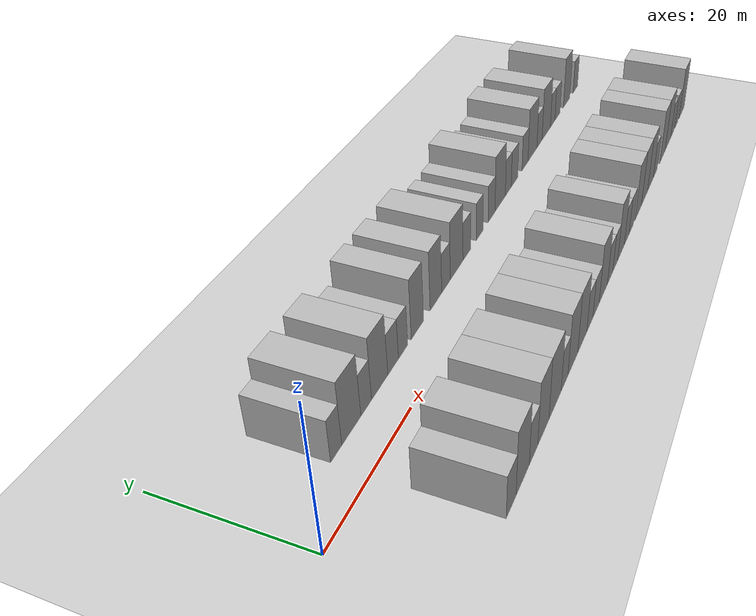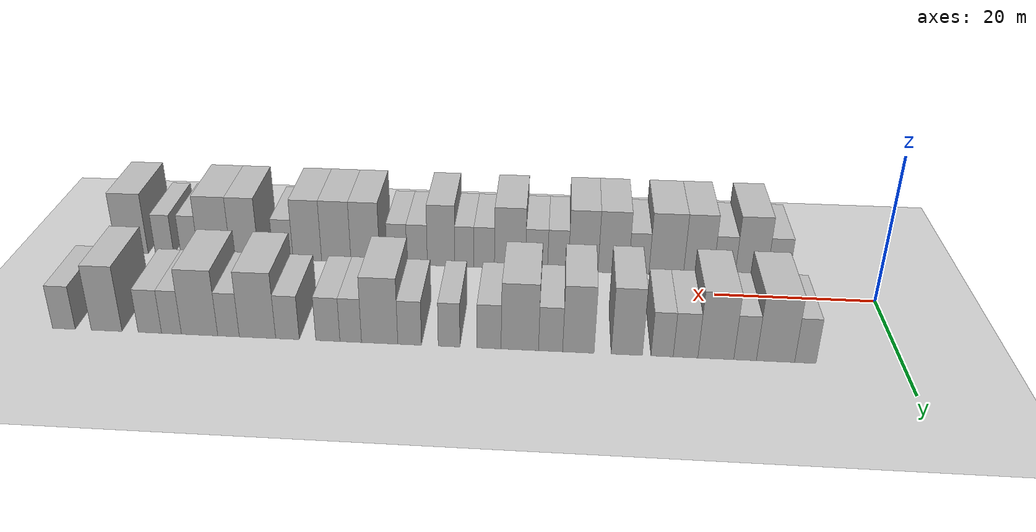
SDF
<sdf version="1.6">
 <world name="default">
  <include><name>ground_plane_1</name><uri>model://HANNAS_ground_plane</uri></include>
  <model name="building_1">
   <static>1</static>
   <pose>11.2225 9.5000 0 0.000000 0.000000 1.570796</pose>
   <link name="link">
    <pose>0 0 3.00 0 0 0</pose>
    <collision name="collision"><geometry><box><size>10.0000 2.4450 6.0000</size></box></geometry></collision>
    <visual name="visual">
     <cast_shadows>0</cast_shadows>
     <geometry><box><size>10.0000 2.4450 6.0000</size></box></geometry>
     <material>
      <script>
       <uri>model://HANNAS_wall/materials/scripts</uri>
       <uri>model://HANNAS_wall/materials/textures</uri>
       <name>vrc/HANNAS_wall</name>
      </script>
     </material>
    </visual>
   </link>
  </model>
  <model name="building_2">
   <static>1</static>
   <pose>14.6333 9.5000 0 0.000000 0.000000 1.570796</pose>
   <link name="link">
    <pose>0 0 4.50 0 0 0</pose>
    <collision name="collision"><geometry><box><size>10.0000 4.3764 9.0000</size></box></geometry></collision>
    <visual name="visual">
     <cast_shadows>0</cast_shadows>
     <geometry><box><size>10.0000 4.3764 9.0000</size></box></geometry>
     <material>
      <script>
       <uri>model://HANNAS_wall/materials/scripts</uri>
       <uri>model://HANNAS_wall/materials/textures</uri>
       <name>vrc/HANNAS_wall</name>
      </script>
     </material>
    </visual>
   </link>
  </model>
  <model name="building_3">
   <static>1</static>
   <pose>18.1173 9.5000 0 0.000000 0.000000 1.570796</pose>
   <link name="link">
    <pose>0 0 3.00 0 0 0</pose>
    <collision name="collision"><geometry><box><size>10.0000 2.5916 6.0000</size></box></geometry></collision>
    <visual name="visual">
     <cast_shadows>0</cast_shadows>
     <geometry><box><size>10.0000 2.5916 6.0000</size></box></geometry>
     <material>
      <script>
       <uri>model://HANNAS_wall/materials/scripts</uri>
       <uri>model://HANNAS_wall/materials/textures</uri>
       <name>vrc/HANNAS_wall</name>
      </script>
     </material>
    </visual>
   </link>
  </model>
  <model name="building_4">
   <static>1</static>
   <pose>21.4784 9.5000 0 0.000000 0.000000 1.570796</pose>
   <link name="link">
    <pose>0 0 4.50 0 0 0</pose>
    <collision name="collision"><geometry><box><size>10.0000 4.1306 9.0000</size></box></geometry></collision>
    <visual name="visual">
     <cast_shadows>0</cast_shadows>
     <geometry><box><size>10.0000 4.1306 9.0000</size></box></geometry>
     <material>
      <script>
       <uri>model://HANNAS_wall/materials/scripts</uri>
       <uri>model://HANNAS_wall/materials/textures</uri>
       <name>vrc/HANNAS_wall</name>
      </script>
     </material>
    </visual>
   </link>
  </model>
  <model name="building_5">
   <static>1</static>
   <pose>24.9693 9.5000 0 0.000000 0.000000 1.570796</pose>
   <link name="link">
    <pose>0 0 3.00 0 0 0</pose>
    <collision name="collision"><geometry><box><size>10.0000 2.8512 6.0000</size></box></geometry></collision>
    <visual name="visual">
     <cast_shadows>0</cast_shadows>
     <geometry><box><size>10.0000 2.8512 6.0000</size></box></geometry>
     <material>
      <script>
       <uri>model://HANNAS_wall/materials/scripts</uri>
       <uri>model://HANNAS_wall/materials/textures</uri>
       <name>vrc/HANNAS_wall</name>
      </script>
     </material>
    </visual>
   </link>
  </model>
  <model name="building_6">
   <static>1</static>
   <pose>27.6801 9.5000 0 0.000000 0.000000 1.570796</pose>
   <link name="link">
    <pose>0 0 3.00 0 0 0</pose>
    <collision name="collision"><geometry><box><size>10.0000 2.5704 6.0000</size></box></geometry></collision>
    <visual name="visual">
     <cast_shadows>0</cast_shadows>
     <geometry><box><size>10.0000 2.5704 6.0000</size></box></geometry>
     <material>
      <script>
       <uri>model://HANNAS_wall/materials/scripts</uri>
       <uri>model://HANNAS_wall/materials/textures</uri>
       <name>vrc/HANNAS_wall</name>
      </script>
     </material>
    </visual>
   </link>
  </model>
  <model name="building_7">
   <static>1</static>
   <pose>31.7829 9.5000 0 0.000000 0.000000 1.570796</pose>
   <link name="link">
    <pose>0 0 4.50 0 0 0</pose>
    <collision name="collision"><geometry><box><size>10.0000 3.6352 9.0000</size></box></geometry></collision>
    <visual name="visual">
     <cast_shadows>0</cast_shadows>
     <geometry><box><size>10.0000 3.6352 9.0000</size></box></geometry>
     <material>
      <script>
       <uri>model://HANNAS_wall/materials/scripts</uri>
       <uri>model://HANNAS_wall/materials/textures</uri>
       <name>vrc/HANNAS_wall</name>
      </script>
     </material>
    </visual>
   </link>
  </model>
  <model name="building_8">
   <static>1</static>
   <pose>37.4453 9.5000 0 0.000000 0.000000 1.570796</pose>
   <link name="link">
    <pose>0 0 4.50 0 0 0</pose>
    <collision name="collision"><geometry><box><size>10.0000 3.6897 9.0000</size></box></geometry></collision>
    <visual name="visual">
     <cast_shadows>0</cast_shadows>
     <geometry><box><size>10.0000 3.6897 9.0000</size></box></geometry>
     <material>
      <script>
       <uri>model://HANNAS_wall/materials/scripts</uri>
       <uri>model://HANNAS_wall/materials/textures</uri>
       <name>vrc/HANNAS_wall</name>
      </script>
     </material>
    </visual>
   </link>
  </model>
  <model name="building_9">
   <static>1</static>
   <pose>40.7067 9.5000 0 0.000000 0.000000 1.570796</pose>
   <link name="link">
    <pose>0 0 3.00 0 0 0</pose>
    <collision name="collision"><geometry><box><size>10.0000 2.8331 6.0000</size></box></geometry></collision>
    <visual name="visual">
     <cast_shadows>0</cast_shadows>
     <geometry><box><size>10.0000 2.8331 6.0000</size></box></geometry>
     <material>
      <script>
       <uri>model://HANNAS_wall/materials/scripts</uri>
       <uri>model://HANNAS_wall/materials/textures</uri>
       <name>vrc/HANNAS_wall</name>
      </script>
     </material>
    </visual>
   </link>
  </model>
  <model name="building_10">
   <static>1</static>
   <pose>44.3347 9.5000 0 0.000000 0.000000 1.570796</pose>
   <link name="link">
    <pose>0 0 4.50 0 0 0</pose>
    <collision name="collision"><geometry><box><size>10.0000 4.4229 9.0000</size></box></geometry></collision>
    <visual name="visual">
     <cast_shadows>0</cast_shadows>
     <geometry><box><size>10.0000 4.4229 9.0000</size></box></geometry>
     <material>
      <script>
       <uri>model://HANNAS_wall/materials/scripts</uri>
       <uri>model://HANNAS_wall/materials/textures</uri>
       <name>vrc/HANNAS_wall</name>
      </script>
     </material>
    </visual>
   </link>
  </model>
  <model name="building_11">
   <static>1</static>
   <pose>47.9818 9.5000 0 0.000000 0.000000 1.570796</pose>
   <link name="link">
    <pose>0 0 3.00 0 0 0</pose>
    <collision name="collision"><geometry><box><size>10.0000 2.8714 6.0000</size></box></geometry></collision>
    <visual name="visual">
     <cast_shadows>0</cast_shadows>
     <geometry><box><size>10.0000 2.8714 6.0000</size></box></geometry>
     <material>
      <script>
       <uri>model://HANNAS_wall/materials/scripts</uri>
       <uri>model://HANNAS_wall/materials/textures</uri>
       <name>vrc/HANNAS_wall</name>
      </script>
     </material>
    </visual>
   </link>
  </model>
  <model name="building_12">
   <static>1</static>
   <pose>52.7090 9.5000 0 0.000000 0.000000 1.570796</pose>
   <link name="link">
    <pose>0 0 3.00 0 0 0</pose>
    <collision name="collision"><geometry><box><size>10.0000 2.5830 6.0000</size></box></geometry></collision>
    <visual name="visual">
     <cast_shadows>0</cast_shadows>
     <geometry><box><size>10.0000 2.5830 6.0000</size></box></geometry>
     <material>
      <script>
       <uri>model://HANNAS_wall/materials/scripts</uri>
       <uri>model://HANNAS_wall/materials/textures</uri>
       <name>vrc/HANNAS_wall</name>
      </script>
     </material>
    </visual>
   </link>
  </model>
  <model name="building_13">
   <static>1</static>
   <pose>57.4176 9.5000 0 0.000000 0.000000 1.570796</pose>
   <link name="link">
    <pose>0 0 3.00 0 0 0</pose>
    <collision name="collision"><geometry><box><size>10.0000 2.8341 6.0000</size></box></geometry></collision>
    <visual name="visual">
     <cast_shadows>0</cast_shadows>
     <geometry><box><size>10.0000 2.8341 6.0000</size></box></geometry>
     <material>
      <script>
       <uri>model://HANNAS_wall/materials/scripts</uri>
       <uri>model://HANNAS_wall/materials/textures</uri>
       <name>vrc/HANNAS_wall</name>
      </script>
     </material>
    </visual>
   </link>
  </model>
  <model name="building_14">
   <static>1</static>
   <pose>61.0146 9.5000 0 0.000000 0.000000 1.570796</pose>
   <link name="link">
    <pose>0 0 4.50 0 0 0</pose>
    <collision name="collision"><geometry><box><size>10.0000 4.3599 9.0000</size></box></geometry></collision>
    <visual name="visual">
     <cast_shadows>0</cast_shadows>
     <geometry><box><size>10.0000 4.3599 9.0000</size></box></geometry>
     <material>
      <script>
       <uri>model://HANNAS_wall/materials/scripts</uri>
       <uri>model://HANNAS_wall/materials/textures</uri>
       <name>vrc/HANNAS_wall</name>
      </script>
     </material>
    </visual>
   </link>
  </model>
  <model name="building_15">
   <static>1</static>
   <pose>64.4956 9.5000 0 0.000000 0.000000 1.570796</pose>
   <link name="link">
    <pose>0 0 3.00 0 0 0</pose>
    <collision name="collision"><geometry><box><size>10.0000 2.6021 6.0000</size></box></geometry></collision>
    <visual name="visual">
     <cast_shadows>0</cast_shadows>
     <geometry><box><size>10.0000 2.6021 6.0000</size></box></geometry>
     <material>
      <script>
       <uri>model://HANNAS_wall/materials/scripts</uri>
       <uri>model://HANNAS_wall/materials/textures</uri>
       <name>vrc/HANNAS_wall</name>
      </script>
     </material>
    </visual>
   </link>
  </model>
  <model name="building_16">
   <static>1</static>
   <pose>67.2565 9.5000 0 0.000000 0.000000 1.570796</pose>
   <link name="link">
    <pose>0 0 3.00 0 0 0</pose>
    <collision name="collision"><geometry><box><size>10.0000 2.9195 6.0000</size></box></geometry></collision>
    <visual name="visual">
     <cast_shadows>0</cast_shadows>
     <geometry><box><size>10.0000 2.9195 6.0000</size></box></geometry>
     <material>
      <script>
       <uri>model://HANNAS_wall/materials/scripts</uri>
       <uri>model://HANNAS_wall/materials/textures</uri>
       <name>vrc/HANNAS_wall</name>
      </script>
     </material>
    </visual>
   </link>
  </model>
  <model name="building_17">
   <static>1</static>
   <pose>72.1539 9.5000 0 0.000000 0.000000 1.570796</pose>
   <link name="link">
    <pose>0 0 3.00 0 0 0</pose>
    <collision name="collision"><geometry><box><size>10.0000 2.8754 6.0000</size></box></geometry></collision>
    <visual name="visual">
     <cast_shadows>0</cast_shadows>
     <geometry><box><size>10.0000 2.8754 6.0000</size></box></geometry>
     <material>
      <script>
       <uri>model://HANNAS_wall/materials/scripts</uri>
       <uri>model://HANNAS_wall/materials/textures</uri>
       <name>vrc/HANNAS_wall</name>
      </script>
     </material>
    </visual>
   </link>
  </model>
  <model name="building_18">
   <static>1</static>
   <pose>75.8124 9.5000 0 0.000000 0.000000 1.570796</pose>
   <link name="link">
    <pose>0 0 4.50 0 0 0</pose>
    <collision name="collision"><geometry><box><size>10.0000 4.4415 9.0000</size></box></geometry></collision>
    <visual name="visual">
     <cast_shadows>0</cast_shadows>
     <geometry><box><size>10.0000 4.4415 9.0000</size></box></geometry>
     <material>
      <script>
       <uri>model://HANNAS_wall/materials/scripts</uri>
       <uri>model://HANNAS_wall/materials/textures</uri>
       <name>vrc/HANNAS_wall</name>
      </script>
     </material>
    </visual>
   </link>
  </model>
  <model name="building_19">
   <static>1</static>
   <pose>79.3534 9.5000 0 0.000000 0.000000 1.570796</pose>
   <link name="link">
    <pose>0 0 3.00 0 0 0</pose>
    <collision name="collision"><geometry><box><size>10.0000 2.6405 6.0000</size></box></geometry></collision>
    <visual name="visual">
     <cast_shadows>0</cast_shadows>
     <geometry><box><size>10.0000 2.6405 6.0000</size></box></geometry>
     <material>
      <script>
       <uri>model://HANNAS_wall/materials/scripts</uri>
       <uri>model://HANNAS_wall/materials/textures</uri>
       <name>vrc/HANNAS_wall</name>
      </script>
     </material>
    </visual>
   </link>
  </model>
  <model name="building_20">
   <static>1</static>
   <pose>82.9072 9.5000 0 0.000000 0.000000 1.570796</pose>
   <link name="link">
    <pose>0 0 4.50 0 0 0</pose>
    <collision name="collision"><geometry><box><size>10.0000 4.4671 9.0000</size></box></geometry></collision>
    <visual name="visual">
     <cast_shadows>0</cast_shadows>
     <geometry><box><size>10.0000 4.4671 9.0000</size></box></geometry>
     <material>
      <script>
       <uri>model://HANNAS_wall/materials/scripts</uri>
       <uri>model://HANNAS_wall/materials/textures</uri>
       <name>vrc/HANNAS_wall</name>
      </script>
     </material>
    </visual>
   </link>
  </model>
  <model name="building_21">
   <static>1</static>
   <pose>86.3686 9.5000 0 0.000000 0.000000 1.570796</pose>
   <link name="link">
    <pose>0 0 3.00 0 0 0</pose>
    <collision name="collision"><geometry><box><size>10.0000 2.4558 6.0000</size></box></geometry></collision>
    <visual name="visual">
     <cast_shadows>0</cast_shadows>
     <geometry><box><size>10.0000 2.4558 6.0000</size></box></geometry>
     <material>
      <script>
       <uri>model://HANNAS_wall/materials/scripts</uri>
       <uri>model://HANNAS_wall/materials/textures</uri>
       <name>vrc/HANNAS_wall</name>
      </script>
     </material>
    </visual>
   </link>
  </model>
  <model name="building_22">
   <static>1</static>
   <pose>89.0423 9.5000 0 0.000000 0.000000 1.570796</pose>
   <link name="link">
    <pose>0 0 3.00 0 0 0</pose>
    <collision name="collision"><geometry><box><size>10.0000 2.8916 6.0000</size></box></geometry></collision>
    <visual name="visual">
     <cast_shadows>0</cast_shadows>
     <geometry><box><size>10.0000 2.8916 6.0000</size></box></geometry>
     <material>
      <script>
       <uri>model://HANNAS_wall/materials/scripts</uri>
       <uri>model://HANNAS_wall/materials/textures</uri>
       <name>vrc/HANNAS_wall</name>
      </script>
     </material>
    </visual>
   </link>
  </model>
  <model name="building_23">
   <static>1</static>
   <pose>94.4059 9.5000 0 0.000000 0.000000 1.570796</pose>
   <link name="link">
    <pose>0 0 4.50 0 0 0</pose>
    <collision name="collision"><geometry><box><size>10.0000 3.8355 9.0000</size></box></geometry></collision>
    <visual name="visual">
     <cast_shadows>0</cast_shadows>
     <geometry><box><size>10.0000 3.8355 9.0000</size></box></geometry>
     <material>
      <script>
       <uri>model://HANNAS_wall/materials/scripts</uri>
       <uri>model://HANNAS_wall/materials/textures</uri>
       <name>vrc/HANNAS_wall</name>
      </script>
     </material>
    </visual>
   </link>
  </model>
  <model name="building_24">
   <static>1</static>
   <pose>99.7454 9.5000 0 0.000000 0.000000 1.570796</pose>
   <link name="link">
    <pose>0 0 3.00 0 0 0</pose>
    <collision name="collision"><geometry><box><size>10.0000 2.8435 6.0000</size></box></geometry></collision>
    <visual name="visual">
     <cast_shadows>0</cast_shadows>
     <geometry><box><size>10.0000 2.8435 6.0000</size></box></geometry>
     <material>
      <script>
       <uri>model://HANNAS_wall/materials/scripts</uri>
       <uri>model://HANNAS_wall/materials/textures</uri>
       <name>vrc/HANNAS_wall</name>
      </script>
     </material>
    </visual>
   </link>
  </model>
  <model name="building_48">
   <static>1</static>
   <pose>11.4430 -9.5000 0 0.000000 0.000000 1.570796</pose>
   <link name="link">
    <pose>0 0 3.00 0 0 0</pose>
    <collision name="collision"><geometry><box><size>10.0000 2.8860 6.0000</size></box></geometry></collision>
    <visual name="visual">
     <cast_shadows>0</cast_shadows>
     <geometry><box><size>10.0000 2.8860 6.0000</size></box></geometry>
     <material>
      <script>
       <uri>model://HANNAS_wall/materials/scripts</uri>
       <uri>model://HANNAS_wall/materials/textures</uri>
       <name>vrc/HANNAS_wall</name>
      </script>
     </material>
    </visual>
   </link>
  </model>
  <model name="building_49">
   <static>1</static>
   <pose>14.9417 -9.5000 0 0.000000 0.000000 1.570796</pose>
   <link name="link">
    <pose>0 0 4.50 0 0 0</pose>
    <collision name="collision"><geometry><box><size>10.0000 4.1114 9.0000</size></box></geometry></collision>
    <visual name="visual">
     <cast_shadows>0</cast_shadows>
     <geometry><box><size>10.0000 4.1114 9.0000</size></box></geometry>
     <material>
      <script>
       <uri>model://HANNAS_wall/materials/scripts</uri>
       <uri>model://HANNAS_wall/materials/textures</uri>
       <name>vrc/HANNAS_wall</name>
      </script>
     </material>
    </visual>
   </link>
  </model>
  <model name="building_50">
   <static>1</static>
   <pose>18.3989 -9.5000 0 0.000000 0.000000 1.570796</pose>
   <link name="link">
    <pose>0 0 3.00 0 0 0</pose>
    <collision name="collision"><geometry><box><size>10.0000 2.8029 6.0000</size></box></geometry></collision>
    <visual name="visual">
     <cast_shadows>0</cast_shadows>
     <geometry><box><size>10.0000 2.8029 6.0000</size></box></geometry>
     <material>
      <script>
       <uri>model://HANNAS_wall/materials/scripts</uri>
       <uri>model://HANNAS_wall/materials/textures</uri>
       <name>vrc/HANNAS_wall</name>
      </script>
     </material>
    </visual>
   </link>
  </model>
  <model name="building_51">
   <static>1</static>
   <pose>21.7332 -9.5000 0 0.000000 0.000000 1.570796</pose>
   <link name="link">
    <pose>0 0 4.50 0 0 0</pose>
    <collision name="collision"><geometry><box><size>10.0000 3.8658 9.0000</size></box></geometry></collision>
    <visual name="visual">
     <cast_shadows>0</cast_shadows>
     <geometry><box><size>10.0000 3.8658 9.0000</size></box></geometry>
     <material>
      <script>
       <uri>model://HANNAS_wall/materials/scripts</uri>
       <uri>model://HANNAS_wall/materials/textures</uri>
       <name>vrc/HANNAS_wall</name>
      </script>
     </material>
    </visual>
   </link>
  </model>
  <model name="building_52">
   <static>1</static>
   <pose>25.9132 -9.5000 0 0.000000 0.000000 1.570796</pose>
   <link name="link">
    <pose>0 0 4.50 0 0 0</pose>
    <collision name="collision"><geometry><box><size>10.0000 4.4941 9.0000</size></box></geometry></collision>
    <visual name="visual">
     <cast_shadows>0</cast_shadows>
     <geometry><box><size>10.0000 4.4941 9.0000</size></box></geometry>
     <material>
      <script>
       <uri>model://HANNAS_wall/materials/scripts</uri>
       <uri>model://HANNAS_wall/materials/textures</uri>
       <name>vrc/HANNAS_wall</name>
      </script>
     </material>
    </visual>
   </link>
  </model>
  <model name="building_53">
   <static>1</static>
   <pose>29.4926 -9.5000 0 0.000000 0.000000 1.570796</pose>
   <link name="link">
    <pose>0 0 3.00 0 0 0</pose>
    <collision name="collision"><geometry><box><size>10.0000 2.6648 6.0000</size></box></geometry></collision>
    <visual name="visual">
     <cast_shadows>0</cast_shadows>
     <geometry><box><size>10.0000 2.6648 6.0000</size></box></geometry>
     <material>
      <script>
       <uri>model://HANNAS_wall/materials/scripts</uri>
       <uri>model://HANNAS_wall/materials/textures</uri>
       <name>vrc/HANNAS_wall</name>
      </script>
     </material>
    </visual>
   </link>
  </model>
  <model name="building_54">
   <static>1</static>
   <pose>32.8305 -9.5000 0 0.000000 0.000000 1.570796</pose>
   <link name="link">
    <pose>0 0 4.50 0 0 0</pose>
    <collision name="collision"><geometry><box><size>10.0000 4.0109 9.0000</size></box></geometry></collision>
    <visual name="visual">
     <cast_shadows>0</cast_shadows>
     <geometry><box><size>10.0000 4.0109 9.0000</size></box></geometry>
     <material>
      <script>
       <uri>model://HANNAS_wall/materials/scripts</uri>
       <uri>model://HANNAS_wall/materials/textures</uri>
       <name>vrc/HANNAS_wall</name>
      </script>
     </material>
    </visual>
   </link>
  </model>
  <model name="building_55">
   <static>1</static>
   <pose>36.7907 -9.5000 0 0.000000 0.000000 1.570796</pose>
   <link name="link">
    <pose>0 0 4.50 0 0 0</pose>
    <collision name="collision"><geometry><box><size>10.0000 3.9094 9.0000</size></box></geometry></collision>
    <visual name="visual">
     <cast_shadows>0</cast_shadows>
     <geometry><box><size>10.0000 3.9094 9.0000</size></box></geometry>
     <material>
      <script>
       <uri>model://HANNAS_wall/materials/scripts</uri>
       <uri>model://HANNAS_wall/materials/textures</uri>
       <name>vrc/HANNAS_wall</name>
      </script>
     </material>
    </visual>
   </link>
  </model>
  <model name="building_56">
   <static>1</static>
   <pose>40.1203 -9.5000 0 0.000000 0.000000 1.570796</pose>
   <link name="link">
    <pose>0 0 3.00 0 0 0</pose>
    <collision name="collision"><geometry><box><size>10.0000 2.7497 6.0000</size></box></geometry></collision>
    <visual name="visual">
     <cast_shadows>0</cast_shadows>
     <geometry><box><size>10.0000 2.7497 6.0000</size></box></geometry>
     <material>
      <script>
       <uri>model://HANNAS_wall/materials/scripts</uri>
       <uri>model://HANNAS_wall/materials/textures</uri>
       <name>vrc/HANNAS_wall</name>
      </script>
     </material>
    </visual>
   </link>
  </model>
  <model name="building_57">
   <static>1</static>
   <pose>42.9620 -9.5000 0 0.000000 0.000000 1.570796</pose>
   <link name="link">
    <pose>0 0 3.00 0 0 0</pose>
    <collision name="collision"><geometry><box><size>10.0000 2.9338 6.0000</size></box></geometry></collision>
    <visual name="visual">
     <cast_shadows>0</cast_shadows>
     <geometry><box><size>10.0000 2.9338 6.0000</size></box></geometry>
     <material>
      <script>
       <uri>model://HANNAS_wall/materials/scripts</uri>
       <uri>model://HANNAS_wall/materials/textures</uri>
       <name>vrc/HANNAS_wall</name>
      </script>
     </material>
    </visual>
   </link>
  </model>
  <model name="building_58">
   <static>1</static>
   <pose>46.4899 -9.5000 0 0.000000 0.000000 1.570796</pose>
   <link name="link">
    <pose>0 0 4.50 0 0 0</pose>
    <collision name="collision"><geometry><box><size>10.0000 4.1221 9.0000</size></box></geometry></collision>
    <visual name="visual">
     <cast_shadows>0</cast_shadows>
     <geometry><box><size>10.0000 4.1221 9.0000</size></box></geometry>
     <material>
      <script>
       <uri>model://HANNAS_wall/materials/scripts</uri>
       <uri>model://HANNAS_wall/materials/textures</uri>
       <name>vrc/HANNAS_wall</name>
      </script>
     </material>
    </visual>
   </link>
  </model>
  <model name="building_59">
   <static>1</static>
   <pose>49.9269 -9.5000 0 0.000000 0.000000 1.570796</pose>
   <link name="link">
    <pose>0 0 3.00 0 0 0</pose>
    <collision name="collision"><geometry><box><size>10.0000 2.7517 6.0000</size></box></geometry></collision>
    <visual name="visual">
     <cast_shadows>0</cast_shadows>
     <geometry><box><size>10.0000 2.7517 6.0000</size></box></geometry>
     <material>
      <script>
       <uri>model://HANNAS_wall/materials/scripts</uri>
       <uri>model://HANNAS_wall/materials/textures</uri>
       <name>vrc/HANNAS_wall</name>
      </script>
     </material>
    </visual>
   </link>
  </model>
  <model name="building_60">
   <static>1</static>
   <pose>52.5697 -9.5000 0 0.000000 0.000000 1.570796</pose>
   <link name="link">
    <pose>0 0 3.00 0 0 0</pose>
    <collision name="collision"><geometry><box><size>10.0000 2.5339 6.0000</size></box></geometry></collision>
    <visual name="visual">
     <cast_shadows>0</cast_shadows>
     <geometry><box><size>10.0000 2.5339 6.0000</size></box></geometry>
     <material>
      <script>
       <uri>model://HANNAS_wall/materials/scripts</uri>
       <uri>model://HANNAS_wall/materials/textures</uri>
       <name>vrc/HANNAS_wall</name>
      </script>
     </material>
    </visual>
   </link>
  </model>
  <model name="building_61">
   <static>1</static>
   <pose>55.6818 -9.5000 0 0.000000 0.000000 1.570796</pose>
   <link name="link">
    <pose>0 0 4.50 0 0 0</pose>
    <collision name="collision"><geometry><box><size>10.0000 3.6902 9.0000</size></box></geometry></collision>
    <visual name="visual">
     <cast_shadows>0</cast_shadows>
     <geometry><box><size>10.0000 3.6902 9.0000</size></box></geometry>
     <material>
      <script>
       <uri>model://HANNAS_wall/materials/scripts</uri>
       <uri>model://HANNAS_wall/materials/textures</uri>
       <name>vrc/HANNAS_wall</name>
      </script>
     </material>
    </visual>
   </link>
  </model>
  <model name="building_62">
   <static>1</static>
   <pose>58.9001 -9.5000 0 0.000000 0.000000 1.570796</pose>
   <link name="link">
    <pose>0 0 3.00 0 0 0</pose>
    <collision name="collision"><geometry><box><size>10.0000 2.7464 6.0000</size></box></geometry></collision>
    <visual name="visual">
     <cast_shadows>0</cast_shadows>
     <geometry><box><size>10.0000 2.7464 6.0000</size></box></geometry>
     <material>
      <script>
       <uri>model://HANNAS_wall/materials/scripts</uri>
       <uri>model://HANNAS_wall/materials/textures</uri>
       <name>vrc/HANNAS_wall</name>
      </script>
     </material>
    </visual>
   </link>
  </model>
  <model name="building_63">
   <static>1</static>
   <pose>61.6086 -9.5000 0 0.000000 0.000000 1.570796</pose>
   <link name="link">
    <pose>0 0 3.00 0 0 0</pose>
    <collision name="collision"><geometry><box><size>10.0000 2.6706 6.0000</size></box></geometry></collision>
    <visual name="visual">
     <cast_shadows>0</cast_shadows>
     <geometry><box><size>10.0000 2.6706 6.0000</size></box></geometry>
     <material>
      <script>
       <uri>model://HANNAS_wall/materials/scripts</uri>
       <uri>model://HANNAS_wall/materials/textures</uri>
       <name>vrc/HANNAS_wall</name>
      </script>
     </material>
    </visual>
   </link>
  </model>
  <model name="building_64">
   <static>1</static>
   <pose>65.8913 -9.5000 0 0.000000 0.000000 1.570796</pose>
   <link name="link">
    <pose>0 0 4.50 0 0 0</pose>
    <collision name="collision"><geometry><box><size>10.0000 3.8949 9.0000</size></box></geometry></collision>
    <visual name="visual">
     <cast_shadows>0</cast_shadows>
     <geometry><box><size>10.0000 3.8949 9.0000</size></box></geometry>
     <material>
      <script>
       <uri>model://HANNAS_wall/materials/scripts</uri>
       <uri>model://HANNAS_wall/materials/textures</uri>
       <name>vrc/HANNAS_wall</name>
      </script>
     </material>
    </visual>
   </link>
  </model>
  <model name="building_65">
   <static>1</static>
   <pose>69.8350 -9.5000 0 0.000000 0.000000 1.570796</pose>
   <link name="link">
    <pose>0 0 4.50 0 0 0</pose>
    <collision name="collision"><geometry><box><size>10.0000 3.9925 9.0000</size></box></geometry></collision>
    <visual name="visual">
     <cast_shadows>0</cast_shadows>
     <geometry><box><size>10.0000 3.9925 9.0000</size></box></geometry>
     <material>
      <script>
       <uri>model://HANNAS_wall/materials/scripts</uri>
       <uri>model://HANNAS_wall/materials/textures</uri>
       <name>vrc/HANNAS_wall</name>
      </script>
     </material>
    </visual>
   </link>
  </model>
  <model name="building_66">
   <static>1</static>
   <pose>73.7753 -9.5000 0 0.000000 0.000000 1.570796</pose>
   <link name="link">
    <pose>0 0 4.50 0 0 0</pose>
    <collision name="collision"><geometry><box><size>10.0000 3.8880 9.0000</size></box></geometry></collision>
    <visual name="visual">
     <cast_shadows>0</cast_shadows>
     <geometry><box><size>10.0000 3.8880 9.0000</size></box></geometry>
     <material>
      <script>
       <uri>model://HANNAS_wall/materials/scripts</uri>
       <uri>model://HANNAS_wall/materials/textures</uri>
       <name>vrc/HANNAS_wall</name>
      </script>
     </material>
    </visual>
   </link>
  </model>
  <model name="building_67">
   <static>1</static>
   <pose>77.0796 -9.5000 0 0.000000 0.000000 1.570796</pose>
   <link name="link">
    <pose>0 0 3.00 0 0 0</pose>
    <collision name="collision"><geometry><box><size>10.0000 2.7206 6.0000</size></box></geometry></collision>
    <visual name="visual">
     <cast_shadows>0</cast_shadows>
     <geometry><box><size>10.0000 2.7206 6.0000</size></box></geometry>
     <material>
      <script>
       <uri>model://HANNAS_wall/materials/scripts</uri>
       <uri>model://HANNAS_wall/materials/textures</uri>
       <name>vrc/HANNAS_wall</name>
      </script>
     </material>
    </visual>
   </link>
  </model>
  <model name="building_68">
   <static>1</static>
   <pose>82.3731 -9.5000 0 0.000000 0.000000 1.570796</pose>
   <link name="link">
    <pose>0 0 4.50 0 0 0</pose>
    <collision name="collision"><geometry><box><size>10.0000 3.8664 9.0000</size></box></geometry></collision>
    <visual name="visual">
     <cast_shadows>0</cast_shadows>
     <geometry><box><size>10.0000 3.8664 9.0000</size></box></geometry>
     <material>
      <script>
       <uri>model://HANNAS_wall/materials/scripts</uri>
       <uri>model://HANNAS_wall/materials/textures</uri>
       <name>vrc/HANNAS_wall</name>
      </script>
     </material>
    </visual>
   </link>
  </model>
  <model name="building_69">
   <static>1</static>
   <pose>86.5410 -9.5000 0 0.000000 0.000000 1.570796</pose>
   <link name="link">
    <pose>0 0 4.50 0 0 0</pose>
    <collision name="collision"><geometry><box><size>10.0000 4.4694 9.0000</size></box></geometry></collision>
    <visual name="visual">
     <cast_shadows>0</cast_shadows>
     <geometry><box><size>10.0000 4.4694 9.0000</size></box></geometry>
     <material>
      <script>
       <uri>model://HANNAS_wall/materials/scripts</uri>
       <uri>model://HANNAS_wall/materials/textures</uri>
       <name>vrc/HANNAS_wall</name>
      </script>
     </material>
    </visual>
   </link>
  </model>
  <model name="building_70">
   <static>1</static>
   <pose>89.9842 -9.5000 0 0.000000 0.000000 1.570796</pose>
   <link name="link">
    <pose>0 0 3.00 0 0 0</pose>
    <collision name="collision"><geometry><box><size>10.0000 2.4170 6.0000</size></box></geometry></collision>
    <visual name="visual">
     <cast_shadows>0</cast_shadows>
     <geometry><box><size>10.0000 2.4170 6.0000</size></box></geometry>
     <material>
      <script>
       <uri>model://HANNAS_wall/materials/scripts</uri>
       <uri>model://HANNAS_wall/materials/textures</uri>
       <name>vrc/HANNAS_wall</name>
      </script>
     </material>
    </visual>
   </link>
  </model>
  <model name="building_71">
   <static>1</static>
   <pose>93.4689 -9.5000 0 0.000000 0.000000 1.570796</pose>
   <link name="link">
    <pose>0 0 3.00 0 0 0</pose>
    <collision name="collision"><geometry><box><size>10.0000 2.5525 6.0000</size></box></geometry></collision>
    <visual name="visual">
     <cast_shadows>0</cast_shadows>
     <geometry><box><size>10.0000 2.5525 6.0000</size></box></geometry>
     <material>
      <script>
       <uri>model://HANNAS_wall/materials/scripts</uri>
       <uri>model://HANNAS_wall/materials/textures</uri>
       <name>vrc/HANNAS_wall</name>
      </script>
     </material>
    </visual>
   </link>
  </model>
  <model name="building_72">
   <static>1</static>
   <pose>97.9680 -9.5000 0 0.000000 0.000000 1.570796</pose>
   <link name="link">
    <pose>0 0 4.50 0 0 0</pose>
    <collision name="collision"><geometry><box><size>10.0000 4.4457 9.0000</size></box></geometry></collision>
    <visual name="visual">
     <cast_shadows>0</cast_shadows>
     <geometry><box><size>10.0000 4.4457 9.0000</size></box></geometry>
     <material>
      <script>
       <uri>model://HANNAS_wall/materials/scripts</uri>
       <uri>model://HANNAS_wall/materials/textures</uri>
       <name>vrc/HANNAS_wall</name>
      </script>
     </material>
    </visual>
   </link>
  </model>
 </world>
</sdf>
